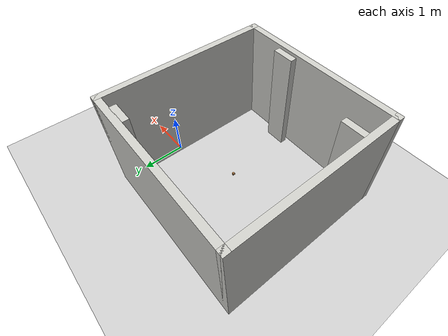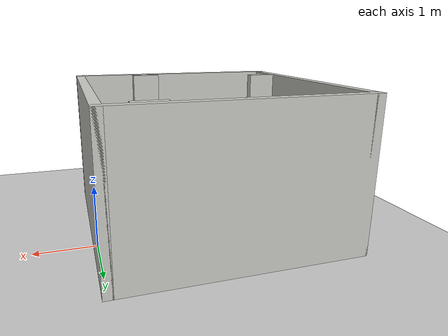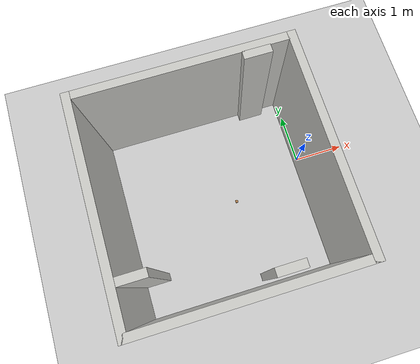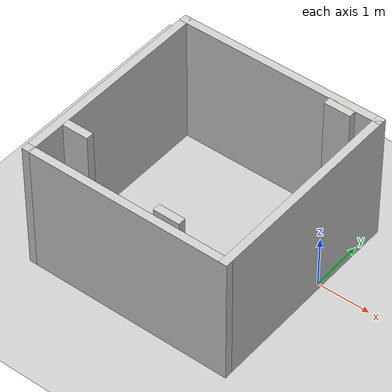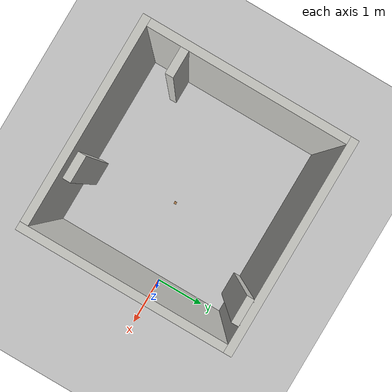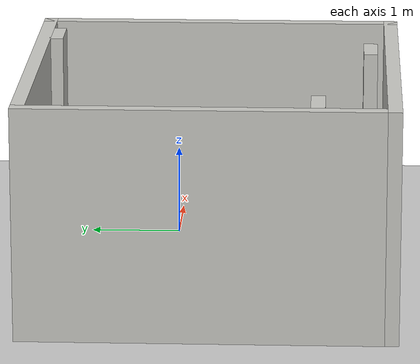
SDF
<sdf version="1.7">
 <world name="default">
  <model name="ground_plane">
   <static>1</static>
   <link name="link">
    <collision name="collision">
     <geometry><plane><normal>0 0 1</normal><size>100 100</size></plane></geometry>
     <surface>
      <contact><collide_bitmask>65535</collide_bitmask></contact>
      <friction><ode><mu>100</mu><mu2>50</mu2></ode></friction>
     </surface>
    </collision>
    <visual name="visual">
     <cast_shadows>0</cast_shadows>
     <geometry><plane><normal>0 0 1</normal><size>100 100</size></plane></geometry>
     <material>
      <script><uri>file://media/materials/scripts/gazebo.material</uri><name>Gazebo/Grey</name></script>
     </material>
    </visual>
   </link>
  </model>
  <light name="sun" type="directional">
   <pose>0 0 10 0 -0 0</pose>
   <diffuse>0.8 0.8 0.8 1</diffuse>
   <specular>0.2 0.2 0.2 1</specular>
   <attenuation>
    <range>1000</range>
    <constant>0.9</constant>
    <linear>0.01</linear>
    <quadratic>0.001</quadratic>
   </attenuation>
   <direction>-0.5 0.1 -0.9</direction>
   <spot><inner_angle>0</inner_angle><outer_angle>0</outer_angle><falloff>0</falloff></spot>
  </light>
  <scene><shadows>0</shadows><ambient>0.4 0.4 0.4 1</ambient><background>0.7 0.7 0.7 1</background></scene>
  <physics type="ode">
   <real_time_update_rate>1000</real_time_update_rate>
   <max_step_size>0.001</max_step_size>
   <real_time_factor>1</real_time_factor>
   <ode>
    <solver>
     <type>quick</type>
     <iters>150</iters>
     <precon_iters>0</precon_iters>
     <sor>1.4</sor>
     <use_dynamic_moi_rescaling>1</use_dynamic_moi_rescaling>
    </solver>
    <constraints>
     <cfm>1e-05</cfm>
     <erp>0.2</erp>
     <contact_max_correcting_vel>2000</contact_max_correcting_vel>
     <contact_surface_layer>0.01</contact_surface_layer>
    </constraints>
   </ode>
  </physics>
  <gravity>0 0 -9.8</gravity>
  <magnetic_field>6e-06 2.3e-05 -4.2e-05</magnetic_field>
  <atmosphere type="adiabatic"/>
  <audio><device>default</device></audio>
  <spherical_coordinates>
   <surface_model>EARTH_WGS84</surface_model>
   <latitude_deg>0</latitude_deg>
   <longitude_deg>0</longitude_deg>
   <elevation>0</elevation>
   <heading_deg>0</heading_deg>
  </spherical_coordinates>
  <model name="WriteSquare">
   <pose>-1.92831 -0.04068 0 0 -0 0</pose>
   <link name="Wall_0">
    <collision name="Wall_0_Collision">
     <geometry><box><size>4 0.15 2.5</size></box></geometry>
     <pose>0 0 1.25 0 -0 0</pose>
    </collision>
    <visual name="Wall_0_Visual">
     <pose>0 0 1.25 0 -0 0</pose>
     <geometry><box><size>4 0.15 2.5</size></box></geometry>
     <material>
      <script><uri>file://media/materials/scripts/gazebo.material</uri><name>Gazebo/CeilingTiled</name></script>
      <ambient>1 1 1 1</ambient>
     </material>
     <meta><layer>0</layer></meta>
    </visual>
    <pose>0 1.4925 0 0 -0 0</pose>
   </link>
   <link name="Wall_2">
    <collision name="Wall_2_Collision">
     <geometry><box><size>4 0.15 2.5</size></box></geometry>
     <pose>0 0 1.25 0 -0 0</pose>
    </collision>
    <visual name="Wall_2_Visual">
     <pose>0 0 1.25 0 -0 0</pose>
     <geometry><box><size>4 0.15 2.5</size></box></geometry>
     <material>
      <script><uri>file://media/materials/scripts/gazebo.material</uri><name>Gazebo/CeilingTiled</name></script>
      <ambient>1 1 1 1</ambient>
     </material>
     <meta><layer>0</layer></meta>
    </visual>
    <pose>1.925 -0.4325 0 0 -0 -1.5708</pose>
   </link>
   <link name="Wall_3">
    <collision name="Wall_3_Collision">
     <geometry><box><size>4 0.15 2.5</size></box></geometry>
     <pose>0 0 1.25 0 -0 0</pose>
    </collision>
    <visual name="Wall_3_Visual">
     <pose>0 0 1.25 0 -0 0</pose>
     <geometry><box><size>4 0.15 2.5</size></box></geometry>
     <material>
      <script><uri>file://media/materials/scripts/gazebo.material</uri><name>Gazebo/CeilingTiled</name></script>
      <ambient>1 1 1 1</ambient>
     </material>
     <meta><layer>0</layer></meta>
    </visual>
    <pose>0 -2.3575 0 0 -0 3.14159</pose>
   </link>
   <link name="Wall_4">
    <collision name="Wall_4_Collision">
     <geometry><box><size>4 0.15 2.5</size></box></geometry>
     <pose>0 0 1.25 0 -0 0</pose>
    </collision>
    <visual name="Wall_4_Visual">
     <pose>0 0 1.25 0 -0 0</pose>
     <geometry><box><size>4 0.15 2.5</size></box></geometry>
     <material>
      <script><uri>file://media/materials/scripts/gazebo.material</uri><name>Gazebo/CeilingTiled</name></script>
      <ambient>1 1 1 1</ambient>
     </material>
     <meta><layer>0</layer></meta>
    </visual>
    <pose>-1.925 -0.4325 0 0 -0 1.5708</pose>
   </link>
   <static>1</static>
  </model>
  <model name="wood_cube_5cm">
   <link name="link">
    <pose>0 0 0.025 0 -0 0</pose>
    <inertial>
     <mass>0.0565</mass>
     <inertia>
      <ixx>2.35417e-05</ixx>
      <ixy>0</ixy>
      <ixz>0</ixz>
      <iyy>2.35417e-05</iyy>
      <iyz>0</iyz>
      <izz>2.35417e-05</izz>
     </inertia>
    </inertial>
    <collision name="collision">
     <geometry><box><size>0.05 0.05 0.05</size></box></geometry>
     <surface>
      <contact>
       <poissons_ratio>0.347</poissons_ratio>
       <elastic_modulus>8.8e+09</elastic_modulus>
       <ode><kp>100000</kp><kd>1</kd><max_vel>1</max_vel><min_depth>0.001</min_depth></ode>
      </contact>
      <friction>
       <torsional>
        <coefficient>1</coefficient>
        <use_patch_radius>0</use_patch_radius>
        <surface_radius>0.05</surface_radius>
       </torsional>
      </friction>
     </surface>
    </collision>
    <visual name="visual">
     <geometry><box><size>0.05 0.05 0.05</size></box></geometry>
     <material>
      <script><uri>file://media/materials/scripts/gazebo.material</uri><name>Gazebo/Wood</name></script>
     </material>
    </visual>
   </link>
   <pose>-1.5207 -0.512507 -0.001001 0 -0 0</pose>
  </model>
  <light name="user_point_light_0" type="point">
   <pose>-1.9343 -0.522225 1 0 -0 0</pose>
   <diffuse>0.5 0.5 0.5 1</diffuse>
   <specular>0.1 0.1 0.1 1</specular>
   <attenuation>
    <range>20</range>
    <constant>0.5</constant>
    <linear>0.01</linear>
    <quadratic>0.001</quadratic>
   </attenuation>
   <cast_shadows>0</cast_shadows>
   <direction>0 0 -1</direction>
   <spot><inner_angle>0</inner_angle><outer_angle>0</outer_angle><falloff>0</falloff></spot>
  </light>
  <plugin name="gazebo_link_attacher" filename="libgazebo_link_attacher.so"/>
  <plugin name="gazebo_ros_state" filename="libgazebo_ros_state.so"/>
  <model name="wall">
   <pose>-3.01034 -0.759953 0 0 -0 0</pose>
   <link name="Wall_0">
    <collision name="Wall_0_Collision">
     <geometry><box><size>0.5 0.15 2.5</size></box></geometry>
     <pose>0 0 1.25 0 -0 0</pose>
    </collision>
    <visual name="Wall_0_Visual">
     <pose>0 0 1.25 0 -0 0</pose>
     <geometry><box><size>0.5 0.15 2.5</size></box></geometry>
     <material>
      <script><uri>file://media/materials/scripts/gazebo.material</uri><name>Gazebo/CeilingTiled</name></script>
      <ambient>1 1 1 1</ambient>
     </material>
     <meta><layer>0</layer></meta>
    </visual>
    <pose>-0.5225 -0.8525 0 0 -0 0</pose>
   </link>
   <static>1</static>
  </model>
  <model name="wall_0">
   <pose>-0.133963 2.16724 0 0 -0 0</pose>
   <link name="Wall_0">
    <collision name="Wall_0_Collision">
     <geometry><box><size>0.5 0.15 2.5</size></box></geometry>
     <pose>0 0 1.25 0 -0 0</pose>
    </collision>
    <visual name="Wall_0_Visual">
     <pose>0 0 1.25 0 -0 0</pose>
     <geometry><box><size>0.5 0.15 2.5</size></box></geometry>
     <material>
      <script><uri>file://media/materials/scripts/gazebo.material</uri><name>Gazebo/CeilingTiled</name></script>
      <ambient>1 1 1 1</ambient>
     </material>
     <meta><layer>0</layer></meta>
    </visual>
    <pose>-0.5225 -0.8525 0 0 -0 0</pose>
   </link>
   <static>1</static>
  </model>
  <model name="wall_1">
   <pose>-0.739249 -1.31385 0 0 -0 0</pose>
   <link name="Wall_0">
    <collision name="Wall_0_Collision">
     <geometry><box><size>0.5 0.15 2.5</size></box></geometry>
     <pose>0 0 1.25 0 -0 0</pose>
    </collision>
    <visual name="Wall_0_Visual">
     <pose>0 0 1.25 0 -0 0</pose>
     <geometry><box><size>0.5 0.15 2.5</size></box></geometry>
     <material>
      <script><uri>file://media/materials/scripts/gazebo.material</uri><name>Gazebo/CeilingTiled</name></script>
      <ambient>1 1 1 1</ambient>
     </material>
     <meta><layer>0</layer></meta>
    </visual>
    <pose>-0.5225 -0.8525 0 0 -0 0</pose>
   </link>
   <static>1</static>
  </model>
 </world>
</sdf>
